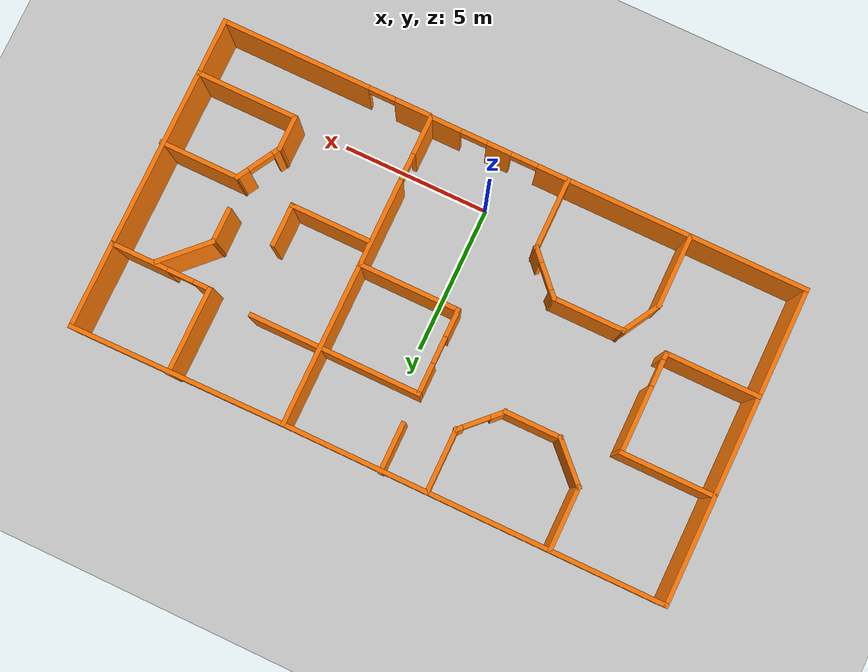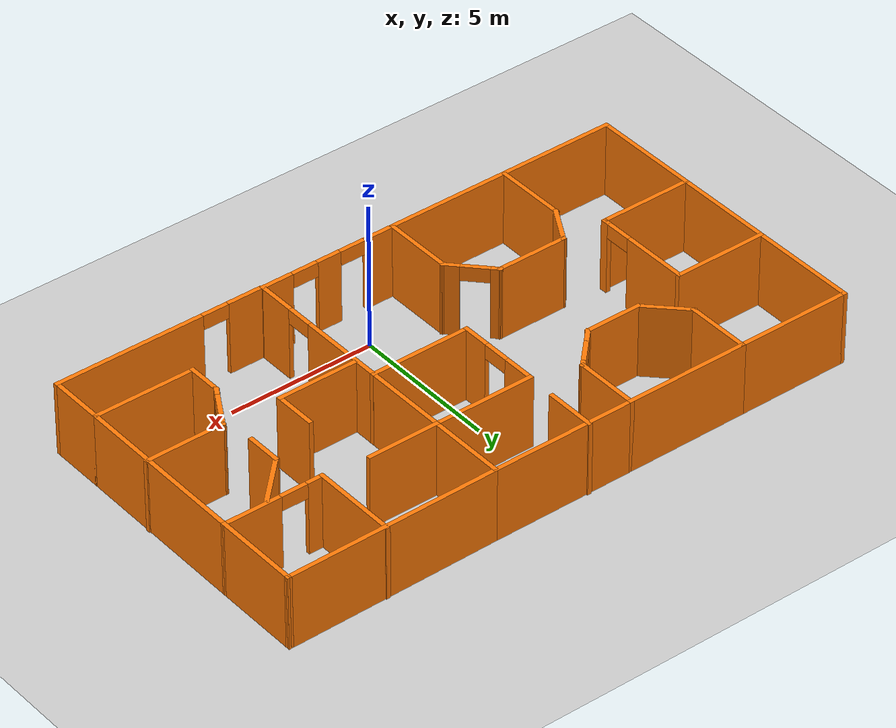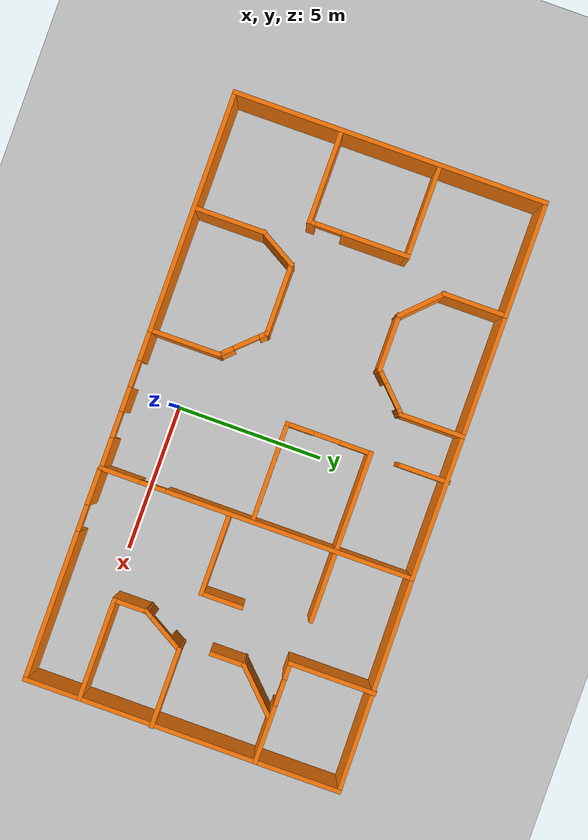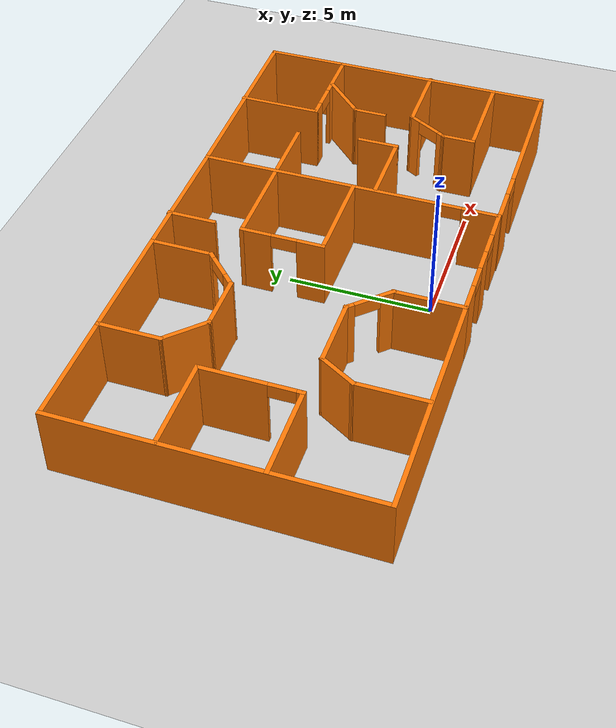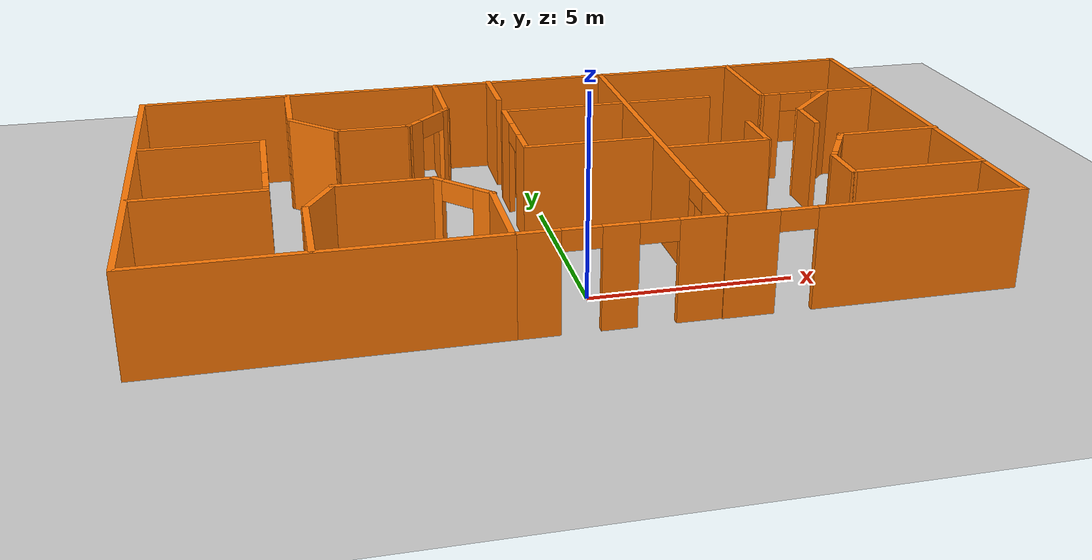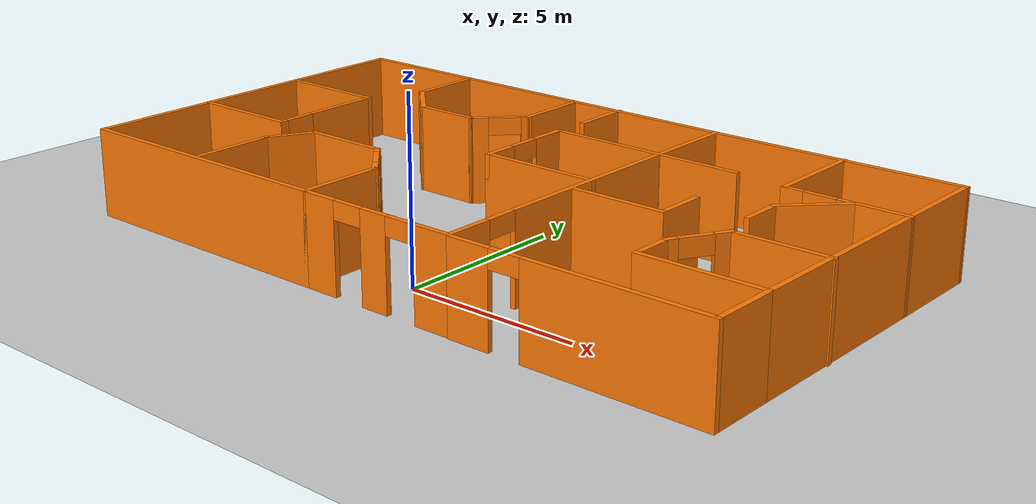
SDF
<sdf version="1.7">
 <world name="default">
  <model name="ground_plane">
   <static>1</static>
   <link name="link">
    <collision name="collision">
     <geometry><plane><normal>0 0 1</normal><size>100 100</size></plane></geometry>
     <surface><friction><ode><mu>100</mu><mu2>50</mu2></ode></friction></surface>
    </collision>
    <visual name="visual">
     <cast_shadows>0</cast_shadows>
     <geometry><plane><normal>0 0 1</normal><size>100 100</size></plane></geometry>
     <material>
      <script><uri>file://media/materials/scripts/gazebo.material</uri><name>Gazebo/Grey</name></script>
     </material>
    </visual>
   </link>
  </model>
  <model name="nha1">
   <pose>-0.116735 3.77393 0 0 -0 0</pose>
   <link name="Wall_29">
    <collision name="Wall_29_Collision">
     <geometry><box><size>10.75 0.15 2.5</size></box></geometry>
     <pose>0 0 1.25 0 -0 0</pose>
    </collision>
    <visual name="Wall_29_Visual">
     <pose>0 0 1.25 0 -0 0</pose>
     <geometry><box><size>10.75 0.15 2.5</size></box></geometry>
     <material>
      <script><uri>file://media/materials/scripts/gazebo.material</uri><name>Gazebo/Grey</name></script>
      <ambient>0.996078 0.47451 0.0196078 1</ambient>
     </material>
     <meta><layer>0</layer></meta>
    </visual>
    <pose>-10.0315 -0.022957 0 0 -0 -1.5708</pose>
   </link>
   <link name="Wall_30">
    <collision name="Wall_30_Collision">
     <geometry><box><size>8.25 0.15 2.5</size></box></geometry>
     <pose>0 0 1.25 0 -0 0</pose>
    </collision>
    <visual name="Wall_30_Visual">
     <pose>0 0 1.25 0 -0 0</pose>
     <geometry><box><size>8.25 0.15 2.5</size></box></geometry>
     <material>
      <script><uri>file://media/materials/scripts/gazebo.material</uri><name>Gazebo/Grey</name></script>
      <ambient>0.996078 0.47451 0.0196078 1</ambient>
     </material>
     <meta><layer>0</layer></meta>
    </visual>
    <pose>-5.98146 -5.32296 0 0 -0 0</pose>
   </link>
   <link name="Wall_31">
    <collision name="Wall_31_Collision">
     <geometry><box><size>2.5 0.15 2.5</size></box></geometry>
     <pose>0 0 1.25 0 -0 0</pose>
    </collision>
    <visual name="Wall_31_Visual">
     <pose>0 0 1.25 0 -0 0</pose>
     <geometry><box><size>2.5 0.15 2.5</size></box></geometry>
     <material>
      <script><uri>file://media/materials/scripts/gazebo.material</uri><name>Gazebo/Grey</name></script>
      <ambient>0.996078 0.47451 0.0196078 1</ambient>
     </material>
     <meta><layer>0</layer></meta>
    </visual>
    <pose>-1.93146 -4.14796 0 0 -0 1.5708</pose>
   </link>
   <link name="Wall_34">
    <collision name="Wall_34_Collision">
     <geometry><box><size>2.5 0.15 2.5</size></box></geometry>
     <pose>0 0 1.25 0 -0 0</pose>
    </collision>
    <visual name="Wall_34_Visual">
     <pose>0 0 1.25 0 -0 0</pose>
     <geometry><box><size>2.5 0.15 2.5</size></box></geometry>
     <material>
      <script><uri>file://media/materials/scripts/gazebo.material</uri><name>Gazebo/Grey</name></script>
      <ambient>0.996078 0.47451 0.0196078 1</ambient>
     </material>
     <meta><layer>0</layer></meta>
    </visual>
    <pose>-6.10628 -4.10617 0 0 -0 1.5708</pose>
   </link>
   <link name="Wall_35">
    <collision name="Wall_35_Collision">
     <geometry><box><size>1.5 0.15 2.5</size></box></geometry>
     <pose>0 0 1.25 0 -0 0</pose>
    </collision>
    <visual name="Wall_35_Visual">
     <pose>0 0 1.25 0 -0 0</pose>
     <geometry><box><size>1.5 0.15 2.5</size></box></geometry>
     <material>
      <script><uri>file://media/materials/scripts/gazebo.material</uri><name>Gazebo/Grey</name></script>
      <ambient>0.996078 0.47451 0.0196078 1</ambient>
     </material>
     <meta><layer>0</layer></meta>
    </visual>
    <pose>-5.76878 -2.3466 0 0 -0 1.0472</pose>
   </link>
   <link name="Wall_36">
    <collision name="Wall_36_Collision">
     <geometry><box><size>2.5 0.15 2.5</size></box></geometry>
     <pose>0 0 1.25 0 -0 0</pose>
    </collision>
    <visual name="Wall_36_Visual">
     <pose>0 0 1.25 0 -0 0</pose>
     <geometry><box><size>2.5 0.15 2.5</size></box></geometry>
     <material>
      <script><uri>file://media/materials/scripts/gazebo.material</uri><name>Gazebo/Grey</name></script>
      <ambient>0.996078 0.47451 0.0196078 1</ambient>
     </material>
     <meta><layer>0</layer></meta>
    </visual>
    <pose>-4.25628 -1.76203 0 0 -0 0</pose>
   </link>
   <link name="Wall_37">
    <pose>-2.50637 -2.36749 0 0 -0 -0.811277</pose>
    <visual name="Wall_37_Visual_0">
     <pose>-0.735279 0 1.25 0 -0 0</pose>
     <geometry><box><size>0.349295 0.15 2.5</size></box></geometry>
     <material>
      <script><uri>file://media/materials/scripts/gazebo.material</uri><name>Gazebo/Grey</name></script>
      <ambient>0.996078 0.47451 0.0196078 1</ambient>
     </material>
     <meta><layer>0</layer></meta>
    </visual>
    <collision name="Wall_37_Collision_0">
     <geometry><box><size>0.349295 0.15 2.5</size></box></geometry>
     <pose>-0.735279 0 1.25 0 -0 0</pose>
    </collision>
    <visual name="Wall_37_Visual_1">
     <pose>0.624647 0 1.25 0 -0 0</pose>
     <geometry><box><size>0.570559 0.15 2.5</size></box></geometry>
     <material>
      <script><uri>file://media/materials/scripts/gazebo.material</uri><name>Gazebo/Grey</name></script>
      <ambient>0.996078 0.47451 0.0196078 1</ambient>
     </material>
     <meta><layer>0</layer></meta>
    </visual>
    <collision name="Wall_37_Collision_1">
     <geometry><box><size>0.570559 0.15 2.5</size></box></geometry>
     <pose>0.624647 0 1.25 0 -0 0</pose>
    </collision>
    <visual name="Wall_37_Visual_2">
     <pose>-0.110632 0 2.25 0 -0 0</pose>
     <geometry><box><size>0.9 0.15 0.5</size></box></geometry>
     <material>
      <script><uri>file://media/materials/scripts/gazebo.material</uri><name>Gazebo/Grey</name></script>
      <ambient>0.996078 0.47451 0.0196078 1</ambient>
     </material>
     <meta><layer>0</layer></meta>
    </visual>
    <collision name="Wall_37_Collision_2">
     <geometry><box><size>0.9 0.15 0.5</size></box></geometry>
     <pose>-0.110632 0 2.25 0 -0 0</pose>
    </collision>
   </link>
   <link name="Wall_43">
    <collision name="Wall_43_Collision">
     <geometry><box><size>3.25 0.15 2.5</size></box></geometry>
     <pose>0 0 1.25 0 -0 0</pose>
    </collision>
    <visual name="Wall_43_Visual">
     <pose>0 0 1.25 0 -0 0</pose>
     <geometry><box><size>3.25 0.15 2.5</size></box></geometry>
     <material>
      <script><uri>file://media/materials/scripts/gazebo.material</uri><name>Gazebo/Grey</name></script>
      <ambient>0.996078 0.47451 0.0196078 1</ambient>
     </material>
     <meta><layer>0</layer></meta>
    </visual>
    <pose>-8.47405 -1.67822 0 0 -0 0</pose>
   </link>
   <link name="Wall_44">
    <pose>-6.92405 -0.003215 0 0 -0 1.5708</pose>
    <visual name="Wall_44_Visual_0">
     <pose>-1.60946 0 1.25 0 -0 0</pose>
     <geometry><box><size>0.281077 0.15 2.5</size></box></geometry>
     <material>
      <script><uri>file://media/materials/scripts/gazebo.material</uri><name>Gazebo/Grey</name></script>
      <ambient>0.996078 0.47451 0.0196078 1</ambient>
     </material>
     <meta><layer>0</layer></meta>
    </visual>
    <collision name="Wall_44_Collision_0">
     <geometry><box><size>0.281077 0.15 2.5</size></box></geometry>
     <pose>-1.60946 0 1.25 0 -0 0</pose>
    </collision>
    <visual name="Wall_44_Visual_1">
     <pose>0.590538 0 1.25 0 -0 0</pose>
     <geometry><box><size>2.31892 0.15 2.5</size></box></geometry>
     <material>
      <script><uri>file://media/materials/scripts/gazebo.material</uri><name>Gazebo/Grey</name></script>
      <ambient>0.996078 0.47451 0.0196078 1</ambient>
     </material>
     <meta><layer>0</layer></meta>
    </visual>
    <collision name="Wall_44_Collision_1">
     <geometry><box><size>2.31892 0.15 2.5</size></box></geometry>
     <pose>0.590538 0 1.25 0 -0 0</pose>
    </collision>
    <visual name="Wall_44_Visual_2">
     <pose>-1.01892 0 2.25 0 -0 0</pose>
     <geometry><box><size>0.9 0.15 0.5</size></box></geometry>
     <material>
      <script><uri>file://media/materials/scripts/gazebo.material</uri><name>Gazebo/Grey</name></script>
      <ambient>0.996078 0.47451 0.0196078 1</ambient>
     </material>
     <meta><layer>0</layer></meta>
    </visual>
    <collision name="Wall_44_Collision_2">
     <geometry><box><size>0.9 0.15 0.5</size></box></geometry>
     <pose>-1.01892 0 2.25 0 -0 0</pose>
    </collision>
   </link>
   <link name="Wall_45">
    <collision name="Wall_45_Collision">
     <geometry><box><size>3.25 0.15 2.5</size></box></geometry>
     <pose>0 0 1.25 0 -0 0</pose>
    </collision>
    <visual name="Wall_45_Visual">
     <pose>0 0 1.25 0 -0 0</pose>
     <geometry><box><size>3.25 0.15 2.5</size></box></geometry>
     <material>
      <script><uri>file://media/materials/scripts/gazebo.material</uri><name>Gazebo/Grey</name></script>
      <ambient>0.996078 0.47451 0.0196078 1</ambient>
     </material>
     <meta><layer>0</layer></meta>
    </visual>
    <pose>-8.47405 1.67179 0 0 -0 3.14159</pose>
   </link>
   <link name="Wall_47">
    <collision name="Wall_47_Collision">
     <geometry><box><size>4 0.15 2.5</size></box></geometry>
     <pose>0 0 1.25 0 -0 0</pose>
    </collision>
    <visual name="Wall_47_Visual">
     <pose>0 0 1.25 0 -0 0</pose>
     <geometry><box><size>4 0.15 2.5</size></box></geometry>
     <material>
      <script><uri>file://media/materials/scripts/gazebo.material</uri><name>Gazebo/Grey</name></script>
      <ambient>0.996078 0.47451 0.0196078 1</ambient>
     </material>
     <meta><layer>0</layer></meta>
    </visual>
    <pose>-8.10646 5.27704 0 0 -0 0</pose>
   </link>
   <link name="Wall_48">
    <collision name="Wall_48_Collision">
     <geometry><box><size>2.25 0.15 2.5</size></box></geometry>
     <pose>0 0 1.25 0 -0 0</pose>
    </collision>
    <visual name="Wall_48_Visual">
     <pose>0 0 1.25 0 -0 0</pose>
     <geometry><box><size>2.25 0.15 2.5</size></box></geometry>
     <material>
      <script><uri>file://media/materials/scripts/gazebo.material</uri><name>Gazebo/Grey</name></script>
      <ambient>0.996078 0.47451 0.0196078 1</ambient>
     </material>
     <meta><layer>0</layer></meta>
    </visual>
    <pose>-6.18146 4.22704 0 0 -0 -1.5708</pose>
   </link>
   <link name="Wall_49">
    <collision name="Wall_49_Collision">
     <geometry><box><size>1.75 0.15 2.5</size></box></geometry>
     <pose>0 0 1.25 0 -0 0</pose>
    </collision>
    <visual name="Wall_49_Visual">
     <pose>0 0 1.25 0 -0 0</pose>
     <geometry><box><size>1.75 0.15 2.5</size></box></geometry>
     <material>
      <script><uri>file://media/materials/scripts/gazebo.material</uri><name>Gazebo/Grey</name></script>
      <ambient>0.996078 0.47451 0.0196078 1</ambient>
     </material>
     <meta><layer>0</layer></meta>
    </visual>
    <pose>-5.61578 2.61136 0 0 -0 -0.785398</pose>
   </link>
   <link name="Wall_50">
    <collision name="Wall_50_Collision">
     <geometry><box><size>2 0.15 2.5</size></box></geometry>
     <pose>0 0 1.25 0 -0 0</pose>
    </collision>
    <visual name="Wall_50_Visual">
     <pose>0 0 1.25 0 -0 0</pose>
     <geometry><box><size>2 0.15 2.5</size></box></geometry>
     <material>
      <script><uri>file://media/materials/scripts/gazebo.material</uri><name>Gazebo/Grey</name></script>
      <ambient>0.996078 0.47451 0.0196078 1</ambient>
     </material>
     <meta><layer>0</layer></meta>
    </visual>
    <pose>-4.12509 2.04567 0 0 -0 0</pose>
   </link>
   <link name="Wall_51">
    <pose>-2.63441 2.61136 0 0 -0 0.785398</pose>
    <visual name="Wall_51_Visual_0">
     <pose>-0.594056 0 1.25 0 -0 0</pose>
     <geometry><box><size>0.561887 0.15 2.5</size></box></geometry>
     <material>
      <script><uri>file://media/materials/scripts/gazebo.material</uri><name>Gazebo/Grey</name></script>
      <ambient>0.996078 0.47451 0.0196078 1</ambient>
     </material>
     <meta><layer>0</layer></meta>
    </visual>
    <collision name="Wall_51_Collision_0">
     <geometry><box><size>0.561887 0.15 2.5</size></box></geometry>
     <pose>-0.594056 0 1.25 0 -0 0</pose>
    </collision>
    <visual name="Wall_51_Visual_1">
     <pose>0.730944 0 1.25 0 -0 0</pose>
     <geometry><box><size>0.288113 0.15 2.5</size></box></geometry>
     <material>
      <script><uri>file://media/materials/scripts/gazebo.material</uri><name>Gazebo/Grey</name></script>
      <ambient>0.996078 0.47451 0.0196078 1</ambient>
     </material>
     <meta><layer>0</layer></meta>
    </visual>
    <collision name="Wall_51_Collision_1">
     <geometry><box><size>0.288113 0.15 2.5</size></box></geometry>
     <pose>0.730944 0 1.25 0 -0 0</pose>
    </collision>
    <visual name="Wall_51_Visual_2">
     <pose>0.136887 0 2.25 0 -0 0</pose>
     <geometry><box><size>0.9 0.15 0.5</size></box></geometry>
     <material>
      <script><uri>file://media/materials/scripts/gazebo.material</uri><name>Gazebo/Grey</name></script>
      <ambient>0.996078 0.47451 0.0196078 1</ambient>
     </material>
     <meta><layer>0</layer></meta>
    </visual>
    <collision name="Wall_51_Collision_2">
     <geometry><box><size>0.9 0.15 0.5</size></box></geometry>
     <pose>0.136887 0 2.25 0 -0 0</pose>
    </collision>
   </link>
   <link name="Wall_52">
    <collision name="Wall_52_Collision">
     <geometry><box><size>2.25 0.15 2.5</size></box></geometry>
     <pose>0 0 1.25 0 -0 0</pose>
    </collision>
    <visual name="Wall_52_Visual">
     <pose>0 0 1.25 0 -0 0</pose>
     <geometry><box><size>2.25 0.15 2.5</size></box></geometry>
     <material>
      <script><uri>file://media/materials/scripts/gazebo.material</uri><name>Gazebo/Grey</name></script>
      <ambient>0.996078 0.47451 0.0196078 1</ambient>
     </material>
     <meta><layer>0</layer></meta>
    </visual>
    <pose>-2.06872 4.22704 0 0 -0 1.5708</pose>
   </link>
   <link name="Wall_53">
    <collision name="Wall_53_Collision">
     <geometry><box><size>4.26274 0.15 2.5</size></box></geometry>
     <pose>0 0 1.25 0 -0 0</pose>
    </collision>
    <visual name="Wall_53_Visual">
     <pose>0 0 1.25 0 -0 0</pose>
     <geometry><box><size>4.26274 0.15 2.5</size></box></geometry>
     <material>
      <script><uri>file://media/materials/scripts/gazebo.material</uri><name>Gazebo/Grey</name></script>
      <ambient>0.996078 0.47451 0.0196078 1</ambient>
     </material>
     <meta><layer>0</layer></meta>
    </visual>
    <pose>-4.12509 5.27704 0 0 -0 3.14159</pose>
   </link>
   <link name="Wall_55">
    <collision name="Wall_55_Collision">
     <geometry><box><size>5 0.15 2.5</size></box></geometry>
     <pose>0 0 1.25 0 -0 0</pose>
    </collision>
    <visual name="Wall_55_Visual">
     <pose>0 0 1.25 0 -0 0</pose>
     <geometry><box><size>5 0.15 2.5</size></box></geometry>
     <material>
      <script><uri>file://media/materials/scripts/gazebo.material</uri><name>Gazebo/Grey</name></script>
      <ambient>0.996078 0.47451 0.0196078 1</ambient>
     </material>
     <meta><layer>0</layer></meta>
    </visual>
    <pose>0.356279 5.27704 0 0 -0 0</pose>
   </link>
   <link name="Wall_59">
    <pose>2.78128 -0.022957 0 0 -0 -1.5708</pose>
    <visual name="Wall_59_Visual_0">
     <pose>-1.13822 0 1.25 0 -0 0</pose>
     <geometry><box><size>8.47355 0.15 2.5</size></box></geometry>
     <material>
      <script><uri>file://media/materials/scripts/gazebo.material</uri><name>Gazebo/Grey</name></script>
      <ambient>0.996078 0.47451 0.0196078 1</ambient>
     </material>
     <meta><layer>0</layer></meta>
    </visual>
    <collision name="Wall_59_Collision_0">
     <geometry><box><size>8.47355 0.15 2.5</size></box></geometry>
     <pose>-1.13822 0 1.25 0 -0 0</pose>
    </collision>
    <visual name="Wall_59_Visual_1">
     <pose>4.68678 0 1.25 0 -0 0</pose>
     <geometry><box><size>1.37644 0.15 2.5</size></box></geometry>
     <material>
      <script><uri>file://media/materials/scripts/gazebo.material</uri><name>Gazebo/Grey</name></script>
      <ambient>0.996078 0.47451 0.0196078 1</ambient>
     </material>
     <meta><layer>0</layer></meta>
    </visual>
    <collision name="Wall_59_Collision_1">
     <geometry><box><size>1.37644 0.15 2.5</size></box></geometry>
     <pose>4.68678 0 1.25 0 -0 0</pose>
    </collision>
    <visual name="Wall_59_Visual_2">
     <pose>3.54855 0 2.25 0 -0 0</pose>
     <geometry><box><size>0.9 0.15 0.5</size></box></geometry>
     <material>
      <script><uri>file://media/materials/scripts/gazebo.material</uri><name>Gazebo/Grey</name></script>
      <ambient>0.996078 0.47451 0.0196078 1</ambient>
     </material>
     <meta><layer>0</layer></meta>
    </visual>
    <collision name="Wall_59_Collision_2">
     <geometry><box><size>0.9 0.15 0.5</size></box></geometry>
     <pose>3.54855 0 2.25 0 -0 0</pose>
    </collision>
   </link>
   <link name="Wall_60">
    <pose>0.481279 -5.32296 0 0 -0 3.14159</pose>
    <visual name="Wall_60_Visual_0">
     <pose>-1.81928 0 1.25 0 -0 0</pose>
     <geometry><box><size>1.11145 0.15 2.5</size></box></geometry>
     <material>
      <script><uri>file://media/materials/scripts/gazebo.material</uri><name>Gazebo/Grey</name></script>
      <ambient>0.996078 0.47451 0.0196078 1</ambient>
     </material>
     <meta><layer>0</layer></meta>
    </visual>
    <collision name="Wall_60_Collision_0">
     <geometry><box><size>1.11145 0.15 2.5</size></box></geometry>
     <pose>-1.81928 0 1.25 0 -0 0</pose>
    </collision>
    <visual name="Wall_60_Visual_1">
     <pose>0.050953 0 1.25 0 -0 0</pose>
     <geometry><box><size>0.829013 0.15 2.5</size></box></geometry>
     <material>
      <script><uri>file://media/materials/scripts/gazebo.material</uri><name>Gazebo/Grey</name></script>
      <ambient>0.996078 0.47451 0.0196078 1</ambient>
     </material>
     <meta><layer>0</layer></meta>
    </visual>
    <collision name="Wall_60_Collision_1">
     <geometry><box><size>0.829013 0.15 2.5</size></box></geometry>
     <pose>0.050953 0 1.25 0 -0 0</pose>
    </collision>
    <visual name="Wall_60_Visual_2">
     <pose>1.87023 0 1.25 0 -0 0</pose>
     <geometry><box><size>1.00954 0.15 2.5</size></box></geometry>
     <material>
      <script><uri>file://media/materials/scripts/gazebo.material</uri><name>Gazebo/Grey</name></script>
      <ambient>0.996078 0.47451 0.0196078 1</ambient>
     </material>
     <meta><layer>0</layer></meta>
    </visual>
    <collision name="Wall_60_Collision_2">
     <geometry><box><size>1.00954 0.15 2.5</size></box></geometry>
     <pose>1.87023 0 1.25 0 -0 0</pose>
    </collision>
    <visual name="Wall_60_Visual_3">
     <pose>-0.813553 0 2.25 0 -0 0</pose>
     <geometry><box><size>0.9 0.15 0.5</size></box></geometry>
     <material>
      <script><uri>file://media/materials/scripts/gazebo.material</uri><name>Gazebo/Grey</name></script>
      <ambient>0.996078 0.47451 0.0196078 1</ambient>
     </material>
     <meta><layer>0</layer></meta>
    </visual>
    <collision name="Wall_60_Collision_3">
     <geometry><box><size>0.9 0.15 0.5</size></box></geometry>
     <pose>-0.813553 0 2.25 0 -0 0</pose>
    </collision>
    <visual name="Wall_60_Visual_4">
     <pose>0.91546 0 2.25 0 -0 0</pose>
     <geometry><box><size>0.9 0.15 0.5</size></box></geometry>
     <material>
      <script><uri>file://media/materials/scripts/gazebo.material</uri><name>Gazebo/Grey</name></script>
      <ambient>0.996078 0.47451 0.0196078 1</ambient>
     </material>
     <meta><layer>0</layer></meta>
    </visual>
    <collision name="Wall_60_Collision_4">
     <geometry><box><size>0.9 0.15 0.5</size></box></geometry>
     <pose>0.91546 0 2.25 0 -0 0</pose>
    </collision>
   </link>
   <link name="Wall_62">
    <collision name="Wall_62_Collision">
     <geometry><box><size>1.75 0.15 2.5</size></box></geometry>
     <pose>0 0 1.25 0 -0 0</pose>
    </collision>
    <visual name="Wall_62_Visual">
     <pose>0 0 1.25 0 -0 0</pose>
     <geometry><box><size>1.75 0.15 2.5</size></box></geometry>
     <material>
      <script><uri>file://media/materials/scripts/gazebo.material</uri><name>Gazebo/Grey</name></script>
      <ambient>0.996078 0.47451 0.0196078 1</ambient>
     </material>
     <meta><layer>0</layer></meta>
    </visual>
    <pose>-0.522165 4.51594 0 0 -0 -1.5708</pose>
   </link>
   <link name="Wall_64">
    <collision name="Wall_64_Collision">
     <geometry><box><size>3.5 0.15 2.5</size></box></geometry>
     <pose>0 0 1.25 0 -0 0</pose>
    </collision>
    <visual name="Wall_64_Visual">
     <pose>0 0 1.25 0 -0 0</pose>
     <geometry><box><size>3.5 0.15 2.5</size></box></geometry>
     <material>
      <script><uri>file://media/materials/scripts/gazebo.material</uri><name>Gazebo/Grey</name></script>
      <ambient>0.996078 0.47451 0.0196078 1</ambient>
     </material>
     <meta><layer>0</layer></meta>
    </visual>
    <pose>1.10964 2.67753 0 0 -0 3.14159</pose>
   </link>
   <link name="Wall_65">
    <pose>-0.565362 1.25253 0 0 -0 -1.5708</pose>
    <visual name="Wall_65_Visual_0">
     <pose>-0.943697 0 1.25 0 -0 0</pose>
     <geometry><box><size>1.11261 0.15 2.5</size></box></geometry>
     <material>
      <script><uri>file://media/materials/scripts/gazebo.material</uri><name>Gazebo/Grey</name></script>
      <ambient>0.996078 0.47451 0.0196078 1</ambient>
     </material>
     <meta><layer>0</layer></meta>
    </visual>
    <collision name="Wall_65_Collision_0">
     <geometry><box><size>1.11261 0.15 2.5</size></box></geometry>
     <pose>-0.943697 0 1.25 0 -0 0</pose>
    </collision>
    <visual name="Wall_65_Visual_1">
     <pose>1.0063 0 1.25 0 -0 0</pose>
     <geometry><box><size>0.987394 0.15 2.5</size></box></geometry>
     <material>
      <script><uri>file://media/materials/scripts/gazebo.material</uri><name>Gazebo/Grey</name></script>
      <ambient>0.996078 0.47451 0.0196078 1</ambient>
     </material>
     <meta><layer>0</layer></meta>
    </visual>
    <collision name="Wall_65_Collision_1">
     <geometry><box><size>0.987394 0.15 2.5</size></box></geometry>
     <pose>1.0063 0 1.25 0 -0 0</pose>
    </collision>
    <visual name="Wall_65_Visual_2">
     <pose>0.062606 0 2.25 0 -0 0</pose>
     <geometry><box><size>0.9 0.15 0.5</size></box></geometry>
     <material>
      <script><uri>file://media/materials/scripts/gazebo.material</uri><name>Gazebo/Grey</name></script>
      <ambient>0.996078 0.47451 0.0196078 1</ambient>
     </material>
     <meta><layer>0</layer></meta>
    </visual>
    <collision name="Wall_65_Collision_2">
     <geometry><box><size>0.9 0.15 0.5</size></box></geometry>
     <pose>0.062606 0 2.25 0 -0 0</pose>
    </collision>
   </link>
   <link name="Wall_66">
    <collision name="Wall_66_Collision">
     <geometry><box><size>3.5 0.15 2.5</size></box></geometry>
     <pose>0 0 1.25 0 -0 0</pose>
    </collision>
    <visual name="Wall_66_Visual">
     <pose>0 0 1.25 0 -0 0</pose>
     <geometry><box><size>3.5 0.15 2.5</size></box></geometry>
     <material>
      <script><uri>file://media/materials/scripts/gazebo.material</uri><name>Gazebo/Grey</name></script>
      <ambient>0.996078 0.47451 0.0196078 1</ambient>
     </material>
     <meta><layer>0</layer></meta>
    </visual>
    <pose>1.10964 -0.17247 0 0 -0 0</pose>
   </link>
   <link name="Wall_68">
    <collision name="Wall_68_Collision">
     <geometry><box><size>3 0.15 2.5</size></box></geometry>
     <pose>0 0 1.25 0 -0 0</pose>
    </collision>
    <visual name="Wall_68_Visual">
     <pose>0 0 1.25 0 -0 0</pose>
     <geometry><box><size>3 0.15 2.5</size></box></geometry>
     <material>
      <script><uri>file://media/materials/scripts/gazebo.material</uri><name>Gazebo/Grey</name></script>
      <ambient>0.996078 0.47451 0.0196078 1</ambient>
     </material>
     <meta><layer>0</layer></meta>
    </visual>
    <pose>6.6543 3.92612 0 0 -0 -1.5708</pose>
   </link>
   <link name="Wall_71">
    <pose>8.3293 2.50112 0 0 -0 0</pose>
    <visual name="Wall_71_Visual_0">
     <pose>-1.43851 0 1.25 0 -0 0</pose>
     <geometry><box><size>0.622978 0.15 2.5</size></box></geometry>
     <material>
      <script><uri>file://media/materials/scripts/gazebo.material</uri><name>Gazebo/Grey</name></script>
      <ambient>0.996078 0.47451 0.0196078 1</ambient>
     </material>
     <meta><layer>0</layer></meta>
    </visual>
    <collision name="Wall_71_Collision_0">
     <geometry><box><size>0.622978 0.15 2.5</size></box></geometry>
     <pose>-1.43851 0 1.25 0 -0 0</pose>
    </collision>
    <visual name="Wall_71_Visual_1">
     <pose>0.761489 0 1.25 0 -0 0</pose>
     <geometry><box><size>1.97702 0.15 2.5</size></box></geometry>
     <material>
      <script><uri>file://media/materials/scripts/gazebo.material</uri><name>Gazebo/Grey</name></script>
      <ambient>0.996078 0.47451 0.0196078 1</ambient>
     </material>
     <meta><layer>0</layer></meta>
    </visual>
    <collision name="Wall_71_Collision_1">
     <geometry><box><size>1.97702 0.15 2.5</size></box></geometry>
     <pose>0.761489 0 1.25 0 -0 0</pose>
    </collision>
    <visual name="Wall_71_Visual_2">
     <pose>-0.677022 0 2.25 0 -0 0</pose>
     <geometry><box><size>0.9 0.15 0.5</size></box></geometry>
     <material>
      <script><uri>file://media/materials/scripts/gazebo.material</uri><name>Gazebo/Grey</name></script>
      <ambient>0.996078 0.47451 0.0196078 1</ambient>
     </material>
     <meta><layer>0</layer></meta>
    </visual>
    <collision name="Wall_71_Collision_2">
     <geometry><box><size>0.9 0.15 0.5</size></box></geometry>
     <pose>-0.677022 0 2.25 0 -0 0</pose>
    </collision>
   </link>
   <link name="Wall_72">
    <collision name="Wall_72_Collision">
     <geometry><box><size>3 0.15 2.5</size></box></geometry>
     <pose>0 0 1.25 0 -0 0</pose>
    </collision>
    <visual name="Wall_72_Visual">
     <pose>0 0 1.25 0 -0 0</pose>
     <geometry><box><size>3 0.15 2.5</size></box></geometry>
     <material>
      <script><uri>file://media/materials/scripts/gazebo.material</uri><name>Gazebo/Grey</name></script>
      <ambient>0.996078 0.47451 0.0196078 1</ambient>
     </material>
     <meta><layer>0</layer></meta>
    </visual>
    <pose>10.0043 3.92612 0 0 -0 1.5708</pose>
   </link>
   <link name="Wall_73">
    <collision name="Wall_73_Collision">
     <geometry><box><size>7.3734 0.15 2.5</size></box></geometry>
     <pose>0 0 1.25 0 -0 0</pose>
    </collision>
    <visual name="Wall_73_Visual">
     <pose>0 0 1.25 0 -0 0</pose>
     <geometry><box><size>7.3734 0.15 2.5</size></box></geometry>
     <material>
      <script><uri>file://media/materials/scripts/gazebo.material</uri><name>Gazebo/Grey</name></script>
      <ambient>0.996078 0.47451 0.0196078 1</ambient>
     </material>
     <meta><layer>0</layer></meta>
    </visual>
    <pose>6.39279 5.31408 0 0 -0 -3.13134</pose>
   </link>
   <link name="Wall_75">
    <collision name="Wall_75_Collision">
     <geometry><box><size>2 0.15 2.5</size></box></geometry>
     <pose>0 0 1.25 0 -0 0</pose>
    </collision>
    <visual name="Wall_75_Visual">
     <pose>0 0 1.25 0 -0 0</pose>
     <geometry><box><size>2 0.15 2.5</size></box></geometry>
     <material>
      <script><uri>file://media/materials/scripts/gazebo.material</uri><name>Gazebo/Grey</name></script>
      <ambient>0.996078 0.47451 0.0196078 1</ambient>
     </material>
     <meta><layer>0</layer></meta>
    </visual>
    <pose>7.8647 1.7772 0 0 -0 -2.35619</pose>
   </link>
   <link name="Wall_76">
    <collision name="Wall_76_Collision">
     <geometry><box><size>1.25 0.15 2.5</size></box></geometry>
     <pose>0 0 1.25 0 -0 0</pose>
    </collision>
    <visual name="Wall_76_Visual">
     <pose>0 0 1.25 0 -0 0</pose>
     <geometry><box><size>1.25 0.15 2.5</size></box></geometry>
     <material>
      <script><uri>file://media/materials/scripts/gazebo.material</uri><name>Gazebo/Grey</name></script>
      <ambient>0.996078 0.47451 0.0196078 1</ambient>
     </material>
     <meta><layer>0</layer></meta>
    </visual>
    <pose>7.21063 0.573131 0 0 -0 -1.5708</pose>
   </link>
   <link name="Wall_78">
    <collision name="Wall_78_Collision">
     <geometry><box><size>2.75 0.15 2.5</size></box></geometry>
     <pose>0 0 1.25 0 -0 0</pose>
    </collision>
    <visual name="Wall_78_Visual">
     <pose>0 0 1.25 0 -0 0</pose>
     <geometry><box><size>2.75 0.15 2.5</size></box></geometry>
     <material>
      <script><uri>file://media/materials/scripts/gazebo.material</uri><name>Gazebo/Grey</name></script>
      <ambient>0.996078 0.47451 0.0196078 1</ambient>
     </material>
     <meta><layer>0</layer></meta>
    </visual>
    <pose>8.73146 -1.01624 0 0 -0 3.14159</pose>
   </link>
   <link name="Wall_79">
    <pose>7.03146 -1.70906 0 0 -0 -2.0944</pose>
    <visual name="Wall_79_Visual_0">
     <pose>-0.622881 0 1.25 0 -0 0</pose>
     <geometry><box><size>0.504237 0.15 2.5</size></box></geometry>
     <material>
      <script><uri>file://media/materials/scripts/gazebo.material</uri><name>Gazebo/Grey</name></script>
      <ambient>0.996078 0.47451 0.0196078 1</ambient>
     </material>
     <meta><layer>0</layer></meta>
    </visual>
    <collision name="Wall_79_Collision_0">
     <geometry><box><size>0.504237 0.15 2.5</size></box></geometry>
     <pose>-0.622881 0 1.25 0 -0 0</pose>
    </collision>
    <visual name="Wall_79_Visual_1">
     <pose>0.702119 0 1.25 0 -0 0</pose>
     <geometry><box><size>0.345763 0.15 2.5</size></box></geometry>
     <material>
      <script><uri>file://media/materials/scripts/gazebo.material</uri><name>Gazebo/Grey</name></script>
      <ambient>0.996078 0.47451 0.0196078 1</ambient>
     </material>
     <meta><layer>0</layer></meta>
    </visual>
    <collision name="Wall_79_Collision_1">
     <geometry><box><size>0.345763 0.15 2.5</size></box></geometry>
     <pose>0.702119 0 1.25 0 -0 0</pose>
    </collision>
    <visual name="Wall_79_Visual_2">
     <pose>0.079237 0 2.25 0 -0 0</pose>
     <geometry><box><size>0.9 0.15 0.5</size></box></geometry>
     <material>
      <script><uri>file://media/materials/scripts/gazebo.material</uri><name>Gazebo/Grey</name></script>
      <ambient>0.996078 0.47451 0.0196078 1</ambient>
     </material>
     <meta><layer>0</layer></meta>
    </visual>
    <collision name="Wall_79_Collision_2">
     <geometry><box><size>0.9 0.15 0.5</size></box></geometry>
     <pose>0.079237 0 2.25 0 -0 0</pose>
    </collision>
   </link>
   <link name="Wall_82">
    <collision name="Wall_82_Collision">
     <geometry><box><size>1.25 0.15 2.5</size></box></geometry>
     <pose>0 0 1.25 0 -0 0</pose>
    </collision>
    <visual name="Wall_82_Visual">
     <pose>0 0 1.25 0 -0 0</pose>
     <geometry><box><size>1.25 0.15 2.5</size></box></geometry>
     <material>
      <script><uri>file://media/materials/scripts/gazebo.material</uri><name>Gazebo/Grey</name></script>
      <ambient>0.996078 0.47451 0.0196078 1</ambient>
     </material>
     <meta><layer>0</layer></meta>
    </visual>
    <pose>6.63146 -2.95188 0 0 -0 -1.5708</pose>
   </link>
   <link name="Wall_83">
    <collision name="Wall_83_Collision">
     <geometry><box><size>3.5 0.15 2.5</size></box></geometry>
     <pose>0 0 1.25 0 -0 0</pose>
    </collision>
    <visual name="Wall_83_Visual">
     <pose>0 0 1.25 0 -0 0</pose>
     <geometry><box><size>3.5 0.15 2.5</size></box></geometry>
     <material>
      <script><uri>file://media/materials/scripts/gazebo.material</uri><name>Gazebo/Grey</name></script>
      <ambient>0.996078 0.47451 0.0196078 1</ambient>
     </material>
     <meta><layer>0</layer></meta>
    </visual>
    <pose>8.30646 -3.50188 0 0 -0 0</pose>
   </link>
   <link name="Wall_84">
    <collision name="Wall_84_Collision">
     <geometry><box><size>6.15304 0.15 2.5</size></box></geometry>
     <pose>0 0 1.25 0 -0 0</pose>
    </collision>
    <visual name="Wall_84_Visual">
     <pose>0 0 1.25 0 -0 0</pose>
     <geometry><box><size>6.15304 0.15 2.5</size></box></geometry>
     <material>
      <script><uri>file://media/materials/scripts/gazebo.material</uri><name>Gazebo/Grey</name></script>
      <ambient>0.996078 0.47451 0.0196078 1</ambient>
     </material>
     <meta><layer>0</layer></meta>
    </visual>
    <pose>9.99288 -0.500383 0 0 -0 1.56699</pose>
   </link>
   <link name="Wall_88">
    <collision name="Wall_88_Collision">
     <geometry><box><size>2 0.15 2.5</size></box></geometry>
     <pose>0 0 1.25 0 -0 0</pose>
    </collision>
    <visual name="Wall_88_Visual">
     <pose>0 0 1.25 0 -0 0</pose>
     <geometry><box><size>2 0.15 2.5</size></box></geometry>
     <material>
      <script><uri>file://media/materials/scripts/gazebo.material</uri><name>Gazebo/Grey</name></script>
      <ambient>0.996078 0.47451 0.0196078 1</ambient>
     </material>
     <meta><layer>0</layer></meta>
    </visual>
    <pose>9.98146 -4.42688 0 0 -0 -1.5708</pose>
   </link>
   <link name="Wall_89">
    <pose>6.43146 -5.35188 0 0 -0 3.14159</pose>
    <visual name="Wall_89_Visual_0">
     <pose>-1.0652 0 1.25 0 -0 0</pose>
     <geometry><box><size>5.11961 0.15 2.5</size></box></geometry>
     <material>
      <script><uri>file://media/materials/scripts/gazebo.material</uri><name>Gazebo/Grey</name></script>
      <ambient>0.996078 0.47451 0.0196078 1</ambient>
     </material>
     <meta><layer>0</layer></meta>
    </visual>
    <collision name="Wall_89_Collision_0">
     <geometry><box><size>5.11961 0.15 2.5</size></box></geometry>
     <pose>-1.0652 0 1.25 0 -0 0</pose>
    </collision>
    <visual name="Wall_89_Visual_1">
     <pose>3.0098 0 1.25 0 -0 0</pose>
     <geometry><box><size>1.23039 0.15 2.5</size></box></geometry>
     <material>
      <script><uri>file://media/materials/scripts/gazebo.material</uri><name>Gazebo/Grey</name></script>
      <ambient>0.996078 0.47451 0.0196078 1</ambient>
     </material>
     <meta><layer>0</layer></meta>
    </visual>
    <collision name="Wall_89_Collision_1">
     <geometry><box><size>1.23039 0.15 2.5</size></box></geometry>
     <pose>3.0098 0 1.25 0 -0 0</pose>
    </collision>
    <visual name="Wall_89_Visual_2">
     <pose>1.94461 0 2.25 0 -0 0</pose>
     <geometry><box><size>0.9 0.15 0.5</size></box></geometry>
     <material>
      <script><uri>file://media/materials/scripts/gazebo.material</uri><name>Gazebo/Grey</name></script>
      <ambient>0.996078 0.47451 0.0196078 1</ambient>
     </material>
     <meta><layer>0</layer></meta>
    </visual>
    <collision name="Wall_89_Collision_2">
     <geometry><box><size>0.9 0.15 0.5</size></box></geometry>
     <pose>1.94461 0 2.25 0 -0 0</pose>
    </collision>
   </link>
   <link name="Wall_91">
    <collision name="Wall_91_Collision">
     <geometry><box><size>2.75 0.15 2.5</size></box></geometry>
     <pose>0 0 1.25 0 -0 0</pose>
    </collision>
    <visual name="Wall_91_Visual">
     <pose>0 0 1.25 0 -0 0</pose>
     <geometry><box><size>2.75 0.15 2.5</size></box></geometry>
     <material>
      <script><uri>file://media/materials/scripts/gazebo.material</uri><name>Gazebo/Grey</name></script>
      <ambient>0.996078 0.47451 0.0196078 1</ambient>
     </material>
     <meta><layer>0</layer></meta>
    </visual>
    <pose>4.19017 -0.945883 0 0 -0 0</pose>
   </link>
   <link name="Wall_92">
    <collision name="Wall_92_Collision">
     <geometry><box><size>1.5 0.15 2.5</size></box></geometry>
     <pose>0 0 1.25 0 -0 0</pose>
    </collision>
    <visual name="Wall_92_Visual">
     <pose>0 0 1.25 0 -0 0</pose>
     <geometry><box><size>1.5 0.15 2.5</size></box></geometry>
     <material>
      <script><uri>file://media/materials/scripts/gazebo.material</uri><name>Gazebo/Grey</name></script>
      <ambient>0.996078 0.47451 0.0196078 1</ambient>
     </material>
     <meta><layer>0</layer></meta>
    </visual>
    <pose>5.49017 -0.270883 0 0 -0 1.5708</pose>
   </link>
   <link name="Wall_95">
    <collision name="Wall_95_Collision">
     <geometry><box><size>2.5 0.15 2.5</size></box></geometry>
     <pose>0 0 1.25 0 -0 0</pose>
    </collision>
    <visual name="Wall_95_Visual">
     <pose>0 0 1.25 0 -0 0</pose>
     <geometry><box><size>2.5 0.15 2.5</size></box></geometry>
     <material>
      <script><uri>file://media/materials/scripts/gazebo.material</uri><name>Gazebo/Grey</name></script>
      <ambient>0.996078 0.47451 0.0196078 1</ambient>
     </material>
     <meta><layer>0</layer></meta>
    </visual>
    <pose>3.95964 2.67753 0 0 -0 0</pose>
   </link>
   <static>1</static>
  </model>
 </world>
</sdf>
